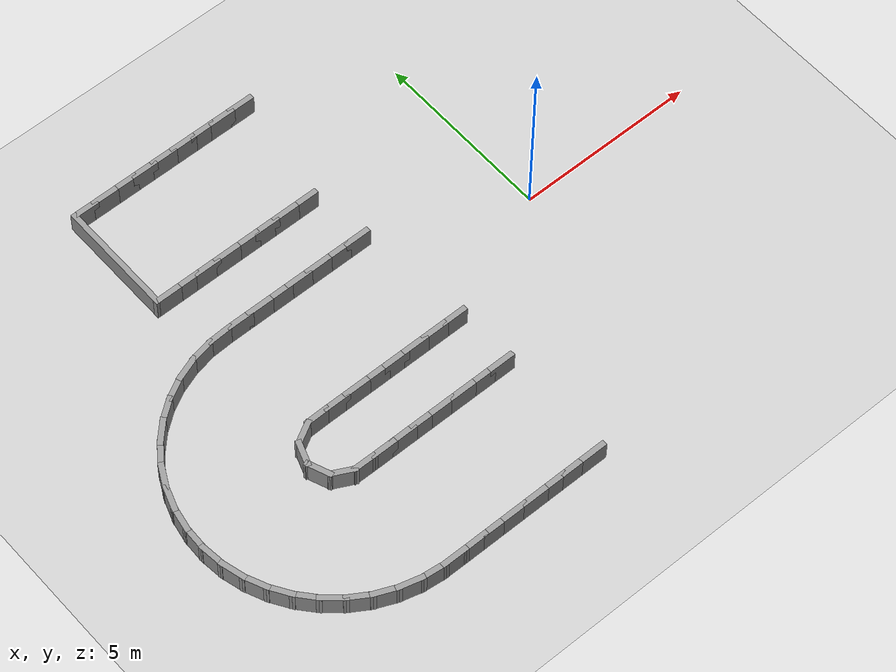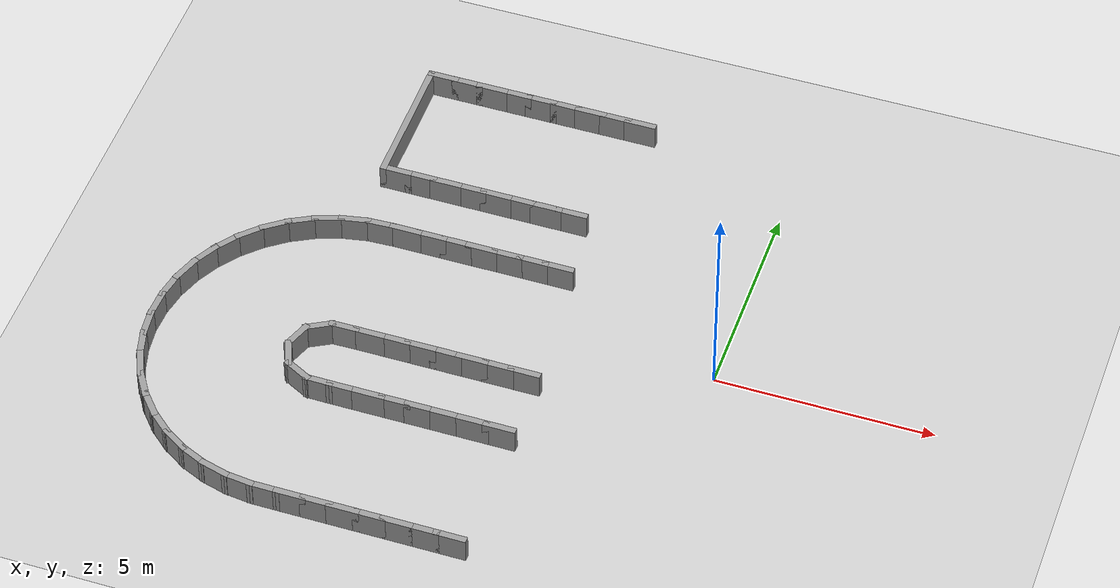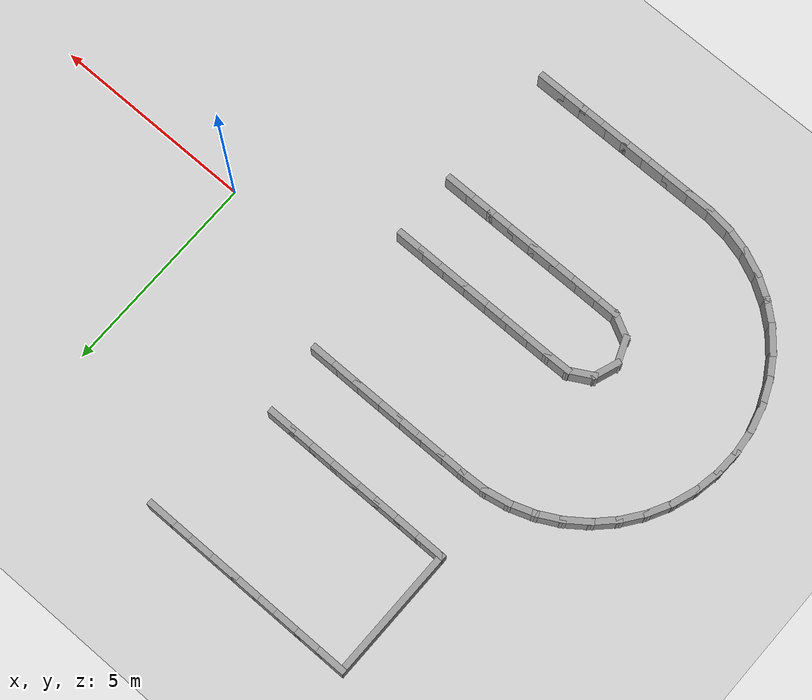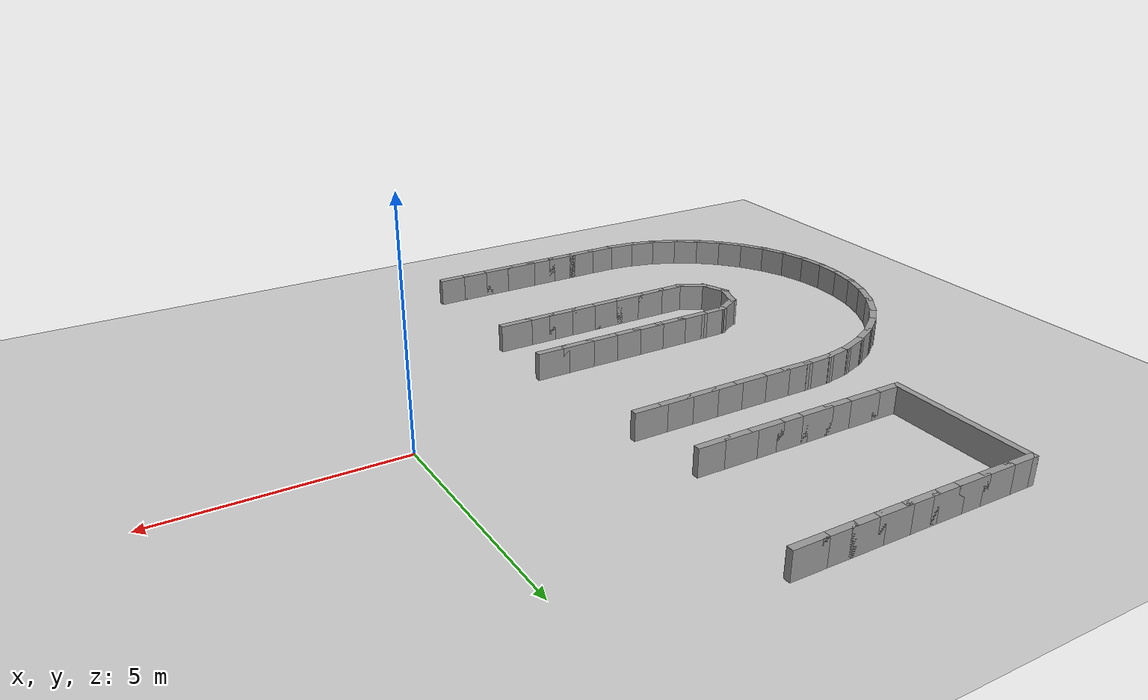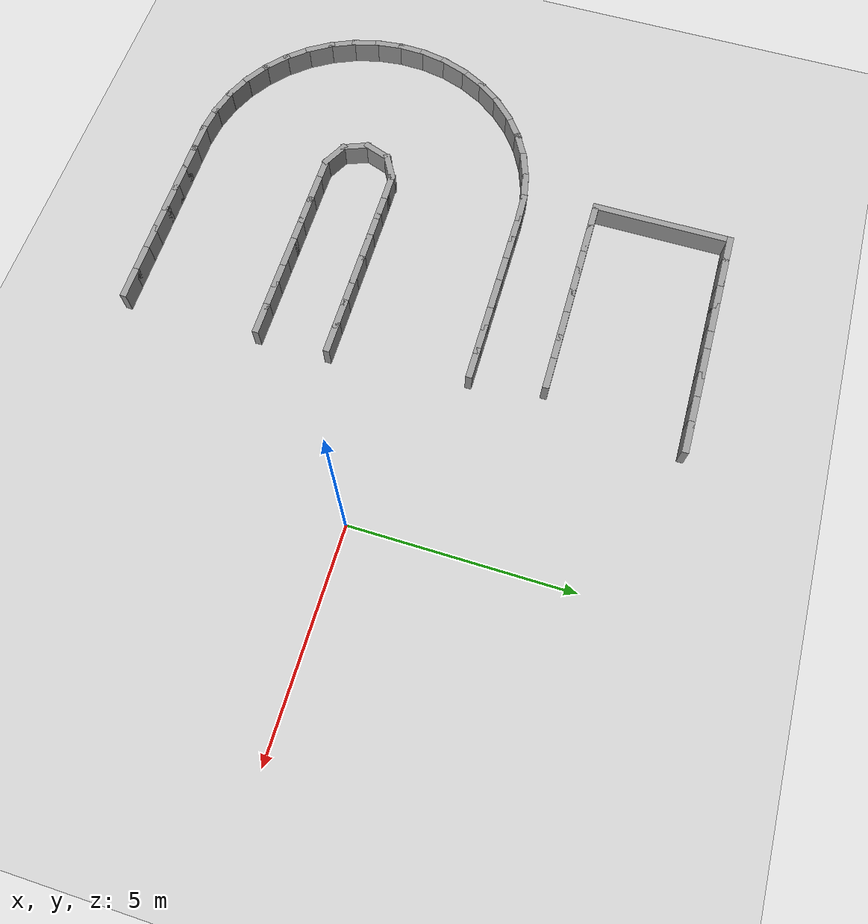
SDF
<sdf version="1.7">
 <world name="default">
  <model name="ground_plane">
   <static>1</static>
   <link name="link">
    <collision name="collision">
     <geometry><plane><normal>0 0 1</normal><size>100 100</size></plane></geometry>
     <surface><friction><ode><mu>100</mu><mu2>50</mu2></ode></friction></surface>
    </collision>
    <visual name="visual">
     <cast_shadows>0</cast_shadows>
     <geometry><plane><normal>0 0 1</normal><size>100 100</size></plane></geometry>
     <material>
      <script><uri>file://media/materials/scripts/gazebo.material</uri><name>Gazebo/Grey</name></script>
     </material>
    </visual>
   </link>
  </model>
  <model name="rand_serp_01">
   <link name="Wall_0">
    <collision name="Wall_0_Collision">
     <geometry><box><size>0.7500 0.1500 0.6000</size></box></geometry>
     <pose>0 0 0.3000 0 -0 0</pose>
    </collision>
    <visual name="Wall_0_Visual">
     <pose>0 0 0.3000 0 -0 0</pose>
     <geometry><box><size>0.7500 0.1500 0.6000</size></box></geometry>
     <material>
      <script><uri>file://media/materials/scripts/gazebo.material</uri><name>Gazebo/Grey</name></script>
      <ambient>1 1 1 1</ambient>
     </material>
    </visual>
    <pose>-8.5786 6.4421 0 0 -0 0.00000</pose>
   </link>
   <link name="Wall_1">
    <collision name="Wall_1_Collision">
     <geometry><box><size>0.7500 0.1500 0.6000</size></box></geometry>
     <pose>0 0 0.3000 0 -0 0</pose>
    </collision>
    <visual name="Wall_1_Visual">
     <pose>0 0 0.3000 0 -0 0</pose>
     <geometry><box><size>0.7500 0.1500 0.6000</size></box></geometry>
     <material>
      <script><uri>file://media/materials/scripts/gazebo.material</uri><name>Gazebo/Grey</name></script>
      <ambient>1 1 1 1</ambient>
     </material>
    </visual>
    <pose>-7.9786 6.4421 0 0 -0 0.00000</pose>
   </link>
   <link name="Wall_2">
    <collision name="Wall_2_Collision">
     <geometry><box><size>0.7500 0.1500 0.6000</size></box></geometry>
     <pose>0 0 0.3000 0 -0 0</pose>
    </collision>
    <visual name="Wall_2_Visual">
     <pose>0 0 0.3000 0 -0 0</pose>
     <geometry><box><size>0.7500 0.1500 0.6000</size></box></geometry>
     <material>
      <script><uri>file://media/materials/scripts/gazebo.material</uri><name>Gazebo/Grey</name></script>
      <ambient>1 1 1 1</ambient>
     </material>
    </visual>
    <pose>-7.3786 6.4421 0 0 -0 0.00000</pose>
   </link>
   <link name="Wall_3">
    <collision name="Wall_3_Collision">
     <geometry><box><size>0.7500 0.1500 0.6000</size></box></geometry>
     <pose>0 0 0.3000 0 -0 0</pose>
    </collision>
    <visual name="Wall_3_Visual">
     <pose>0 0 0.3000 0 -0 0</pose>
     <geometry><box><size>0.7500 0.1500 0.6000</size></box></geometry>
     <material>
      <script><uri>file://media/materials/scripts/gazebo.material</uri><name>Gazebo/Grey</name></script>
      <ambient>1 1 1 1</ambient>
     </material>
    </visual>
    <pose>-6.7786 6.4421 0 0 -0 0.00000</pose>
   </link>
   <link name="Wall_4">
    <collision name="Wall_4_Collision">
     <geometry><box><size>0.7500 0.1500 0.6000</size></box></geometry>
     <pose>0 0 0.3000 0 -0 0</pose>
    </collision>
    <visual name="Wall_4_Visual">
     <pose>0 0 0.3000 0 -0 0</pose>
     <geometry><box><size>0.7500 0.1500 0.6000</size></box></geometry>
     <material>
      <script><uri>file://media/materials/scripts/gazebo.material</uri><name>Gazebo/Grey</name></script>
      <ambient>1 1 1 1</ambient>
     </material>
    </visual>
    <pose>-6.1786 6.4421 0 0 -0 0.00000</pose>
   </link>
   <link name="Wall_5">
    <collision name="Wall_5_Collision">
     <geometry><box><size>0.7500 0.1500 0.6000</size></box></geometry>
     <pose>0 0 0.3000 0 -0 0</pose>
    </collision>
    <visual name="Wall_5_Visual">
     <pose>0 0 0.3000 0 -0 0</pose>
     <geometry><box><size>0.7500 0.1500 0.6000</size></box></geometry>
     <material>
      <script><uri>file://media/materials/scripts/gazebo.material</uri><name>Gazebo/Grey</name></script>
      <ambient>1 1 1 1</ambient>
     </material>
    </visual>
    <pose>-5.5786 6.4421 0 0 -0 0.00000</pose>
   </link>
   <link name="Wall_6">
    <collision name="Wall_6_Collision">
     <geometry><box><size>0.7500 0.1500 0.6000</size></box></geometry>
     <pose>0 0 0.3000 0 -0 0</pose>
    </collision>
    <visual name="Wall_6_Visual">
     <pose>0 0 0.3000 0 -0 0</pose>
     <geometry><box><size>0.7500 0.1500 0.6000</size></box></geometry>
     <material>
      <script><uri>file://media/materials/scripts/gazebo.material</uri><name>Gazebo/Grey</name></script>
      <ambient>1 1 1 1</ambient>
     </material>
    </visual>
    <pose>-4.9786 6.4421 0 0 -0 0.00000</pose>
   </link>
   <link name="Wall_7">
    <collision name="Wall_7_Collision">
     <geometry><box><size>0.7500 0.1500 0.6000</size></box></geometry>
     <pose>0 0 0.3000 0 -0 0</pose>
    </collision>
    <visual name="Wall_7_Visual">
     <pose>0 0 0.3000 0 -0 0</pose>
     <geometry><box><size>0.7500 0.1500 0.6000</size></box></geometry>
     <material>
      <script><uri>file://media/materials/scripts/gazebo.material</uri><name>Gazebo/Grey</name></script>
      <ambient>1 1 1 1</ambient>
     </material>
    </visual>
    <pose>-4.3786 6.4421 0 0 -0 0.00000</pose>
   </link>
   <link name="Wall_8">
    <collision name="Wall_8_Collision">
     <geometry><box><size>0.7500 0.1500 0.6000</size></box></geometry>
     <pose>0 0 0.3000 0 -0 0</pose>
    </collision>
    <visual name="Wall_8_Visual">
     <pose>0 0 0.3000 0 -0 0</pose>
     <geometry><box><size>0.7500 0.1500 0.6000</size></box></geometry>
     <material>
      <script><uri>file://media/materials/scripts/gazebo.material</uri><name>Gazebo/Grey</name></script>
      <ambient>1 1 1 1</ambient>
     </material>
    </visual>
    <pose>-3.7786 6.4421 0 0 -0 0.00000</pose>
   </link>
   <link name="Wall_69">
    <collision name="Wall_69_Collision">
     <geometry><box><size>0.7500 0.1500 0.6000</size></box></geometry>
     <pose>0 0 0.3000 0 -0 0</pose>
    </collision>
    <visual name="Wall_69_Visual">
     <pose>0 0 0.3000 0 -0 0</pose>
     <geometry><box><size>0.7500 0.1500 0.6000</size></box></geometry>
     <material>
      <script><uri>file://media/materials/scripts/gazebo.material</uri><name>Gazebo/Grey</name></script>
      <ambient>1 1 1 1</ambient>
     </material>
    </visual>
    <pose>-3.8445 -1.5924 0 0 -0 3.14159</pose>
   </link>
   <link name="Wall_70">
    <collision name="Wall_70_Collision">
     <geometry><box><size>0.7500 0.1500 0.6000</size></box></geometry>
     <pose>0 0 0.3000 0 -0 0</pose>
    </collision>
    <visual name="Wall_70_Visual">
     <pose>0 0 0.3000 0 -0 0</pose>
     <geometry><box><size>0.7500 0.1500 0.6000</size></box></geometry>
     <material>
      <script><uri>file://media/materials/scripts/gazebo.material</uri><name>Gazebo/Grey</name></script>
      <ambient>1 1 1 1</ambient>
     </material>
    </visual>
    <pose>-4.4445 -1.5924 0 0 -0 3.14159</pose>
   </link>
   <link name="Wall_71">
    <collision name="Wall_71_Collision">
     <geometry><box><size>0.7500 0.1500 0.6000</size></box></geometry>
     <pose>0 0 0.3000 0 -0 0</pose>
    </collision>
    <visual name="Wall_71_Visual">
     <pose>0 0 0.3000 0 -0 0</pose>
     <geometry><box><size>0.7500 0.1500 0.6000</size></box></geometry>
     <material>
      <script><uri>file://media/materials/scripts/gazebo.material</uri><name>Gazebo/Grey</name></script>
      <ambient>1 1 1 1</ambient>
     </material>
    </visual>
    <pose>-5.0445 -1.5924 0 0 -0 3.14159</pose>
   </link>
   <link name="Wall_72">
    <collision name="Wall_72_Collision">
     <geometry><box><size>0.7500 0.1500 0.6000</size></box></geometry>
     <pose>0 0 0.3000 0 -0 0</pose>
    </collision>
    <visual name="Wall_72_Visual">
     <pose>0 0 0.3000 0 -0 0</pose>
     <geometry><box><size>0.7500 0.1500 0.6000</size></box></geometry>
     <material>
      <script><uri>file://media/materials/scripts/gazebo.material</uri><name>Gazebo/Grey</name></script>
      <ambient>1 1 1 1</ambient>
     </material>
    </visual>
    <pose>-5.6445 -1.5924 0 0 -0 3.14159</pose>
   </link>
   <link name="Wall_73">
    <collision name="Wall_73_Collision">
     <geometry><box><size>0.7500 0.1500 0.6000</size></box></geometry>
     <pose>0 0 0.3000 0 -0 0</pose>
    </collision>
    <visual name="Wall_73_Visual">
     <pose>0 0 0.3000 0 -0 0</pose>
     <geometry><box><size>0.7500 0.1500 0.6000</size></box></geometry>
     <material>
      <script><uri>file://media/materials/scripts/gazebo.material</uri><name>Gazebo/Grey</name></script>
      <ambient>1 1 1 1</ambient>
     </material>
    </visual>
    <pose>-6.2445 -1.5924 0 0 -0 3.14159</pose>
   </link>
   <link name="Wall_74">
    <collision name="Wall_74_Collision">
     <geometry><box><size>0.7500 0.1500 0.6000</size></box></geometry>
     <pose>0 0 0.3000 0 -0 0</pose>
    </collision>
    <visual name="Wall_74_Visual">
     <pose>0 0 0.3000 0 -0 0</pose>
     <geometry><box><size>0.7500 0.1500 0.6000</size></box></geometry>
     <material>
      <script><uri>file://media/materials/scripts/gazebo.material</uri><name>Gazebo/Grey</name></script>
      <ambient>1 1 1 1</ambient>
     </material>
    </visual>
    <pose>-6.8445 -1.5924 0 0 -0 3.14159</pose>
   </link>
   <link name="Wall_75">
    <collision name="Wall_75_Collision">
     <geometry><box><size>0.7500 0.1500 0.6000</size></box></geometry>
     <pose>0 0 0.3000 0 -0 0</pose>
    </collision>
    <visual name="Wall_75_Visual">
     <pose>0 0 0.3000 0 -0 0</pose>
     <geometry><box><size>0.7500 0.1500 0.6000</size></box></geometry>
     <material>
      <script><uri>file://media/materials/scripts/gazebo.material</uri><name>Gazebo/Grey</name></script>
      <ambient>1 1 1 1</ambient>
     </material>
    </visual>
    <pose>-7.4445 -1.5924 0 0 -0 3.14159</pose>
   </link>
   <link name="Wall_76">
    <collision name="Wall_76_Collision">
     <geometry><box><size>0.7050 0.1500 0.6000</size></box></geometry>
     <pose>0 0 0.3000 0 -0 0</pose>
    </collision>
    <visual name="Wall_76_Visual">
     <pose>0 0 0.3000 0 -0 0</pose>
     <geometry><box><size>0.7050 0.1500 0.6000</size></box></geometry>
     <material>
      <script><uri>file://media/materials/scripts/gazebo.material</uri><name>Gazebo/Grey</name></script>
      <ambient>1 1 1 1</ambient>
     </material>
    </visual>
    <pose>-8.0219 -1.5969 0 0 -0 -3.12545</pose>
   </link>
   <link name="Wall_77">
    <collision name="Wall_77_Collision">
     <geometry><box><size>0.7370 0.1500 0.6000</size></box></geometry>
     <pose>0 0 0.3000 0 -0 0</pose>
    </collision>
    <visual name="Wall_77_Visual">
     <pose>0 0 0.3000 0 -0 0</pose>
     <geometry><box><size>0.7370 0.1500 0.6000</size></box></geometry>
     <material>
      <script><uri>file://media/materials/scripts/gazebo.material</uri><name>Gazebo/Grey</name></script>
      <ambient>1 1 1 1</ambient>
     </material>
    </visual>
    <pose>-8.5561 -1.7436 0 0 -0 -2.63560</pose>
   </link>
   <link name="Wall_78">
    <collision name="Wall_78_Collision">
     <geometry><box><size>0.7371 0.1500 0.6000</size></box></geometry>
     <pose>0 0 0.3000 0 -0 0</pose>
    </collision>
    <visual name="Wall_78_Visual">
     <pose>0 0 0.3000 0 -0 0</pose>
     <geometry><box><size>0.7371 0.1500 0.6000</size></box></geometry>
     <material>
      <script><uri>file://media/materials/scripts/gazebo.material</uri><name>Gazebo/Grey</name></script>
      <ambient>1 1 1 1</ambient>
     </material>
    </visual>
    <pose>-8.9119 -2.1622 0 0 -0 -1.91482</pose>
   </link>
   <link name="Wall_79">
    <collision name="Wall_79_Collision">
     <geometry><box><size>0.7371 0.1500 0.6000</size></box></geometry>
     <pose>0 0 0.3000 0 -0 0</pose>
    </collision>
    <visual name="Wall_79_Visual">
     <pose>0 0 0.3000 0 -0 0</pose>
     <geometry><box><size>0.7371 0.1500 0.6000</size></box></geometry>
     <material>
      <script><uri>file://media/materials/scripts/gazebo.material</uri><name>Gazebo/Grey</name></script>
      <ambient>1 1 1 1</ambient>
     </material>
    </visual>
    <pose>-8.9028 -2.7115 0 0 -0 -1.19396</pose>
   </link>
   <link name="Wall_80">
    <collision name="Wall_80_Collision">
     <geometry><box><size>0.7371 0.1500 0.6000</size></box></geometry>
     <pose>0 0 0.3000 0 -0 0</pose>
    </collision>
    <visual name="Wall_80_Visual">
     <pose>0 0 0.3000 0 -0 0</pose>
     <geometry><box><size>0.7371 0.1500 0.6000</size></box></geometry>
     <material>
      <script><uri>file://media/materials/scripts/gazebo.material</uri><name>Gazebo/Grey</name></script>
      <ambient>1 1 1 1</ambient>
     </material>
    </visual>
    <pose>-8.5335 -3.1182 0 0 -0 -0.47301</pose>
   </link>
   <link name="Wall_81">
    <collision name="Wall_81_Collision">
     <geometry><box><size>0.6865 0.1500 0.6000</size></box></geometry>
     <pose>0 0 0.3000 0 -0 0</pose>
    </collision>
    <visual name="Wall_81_Visual">
     <pose>0 0 0.3000 0 -0 0</pose>
     <geometry><box><size>0.6865 0.1500 0.6000</size></box></geometry>
     <material>
      <script><uri>file://media/materials/scripts/gazebo.material</uri><name>Gazebo/Grey</name></script>
      <ambient>1 1 1 1</ambient>
     </material>
    </visual>
    <pose>-8.0039 -3.2546 0 0 -0 -0.01001</pose>
   </link>
   <link name="Wall_82">
    <collision name="Wall_82_Collision">
     <geometry><box><size>0.7500 0.1500 0.6000</size></box></geometry>
     <pose>0 0 0.3000 0 -0 0</pose>
    </collision>
    <visual name="Wall_82_Visual">
     <pose>0 0 0.3000 0 -0 0</pose>
     <geometry><box><size>0.7500 0.1500 0.6000</size></box></geometry>
     <material>
      <script><uri>file://media/materials/scripts/gazebo.material</uri><name>Gazebo/Grey</name></script>
      <ambient>1 1 1 1</ambient>
     </material>
    </visual>
    <pose>-7.4357 -3.2573 0 0 -0 0.00000</pose>
   </link>
   <link name="Wall_83">
    <collision name="Wall_83_Collision">
     <geometry><box><size>0.7500 0.1500 0.6000</size></box></geometry>
     <pose>0 0 0.3000 0 -0 0</pose>
    </collision>
    <visual name="Wall_83_Visual">
     <pose>0 0 0.3000 0 -0 0</pose>
     <geometry><box><size>0.7500 0.1500 0.6000</size></box></geometry>
     <material>
      <script><uri>file://media/materials/scripts/gazebo.material</uri><name>Gazebo/Grey</name></script>
      <ambient>1 1 1 1</ambient>
     </material>
    </visual>
    <pose>-6.8357 -3.2573 0 0 -0 0.00000</pose>
   </link>
   <link name="Wall_84">
    <collision name="Wall_84_Collision">
     <geometry><box><size>0.7500 0.1500 0.6000</size></box></geometry>
     <pose>0 0 0.3000 0 -0 0</pose>
    </collision>
    <visual name="Wall_84_Visual">
     <pose>0 0 0.3000 0 -0 0</pose>
     <geometry><box><size>0.7500 0.1500 0.6000</size></box></geometry>
     <material>
      <script><uri>file://media/materials/scripts/gazebo.material</uri><name>Gazebo/Grey</name></script>
      <ambient>1 1 1 1</ambient>
     </material>
    </visual>
    <pose>-6.2357 -3.2573 0 0 -0 0.00000</pose>
   </link>
   <link name="Wall_85">
    <collision name="Wall_85_Collision">
     <geometry><box><size>0.7500 0.1500 0.6000</size></box></geometry>
     <pose>0 0 0.3000 0 -0 0</pose>
    </collision>
    <visual name="Wall_85_Visual">
     <pose>0 0 0.3000 0 -0 0</pose>
     <geometry><box><size>0.7500 0.1500 0.6000</size></box></geometry>
     <material>
      <script><uri>file://media/materials/scripts/gazebo.material</uri><name>Gazebo/Grey</name></script>
      <ambient>1 1 1 1</ambient>
     </material>
    </visual>
    <pose>-5.6357 -3.2573 0 0 -0 0.00000</pose>
   </link>
   <link name="Wall_86">
    <collision name="Wall_86_Collision">
     <geometry><box><size>0.7500 0.1500 0.6000</size></box></geometry>
     <pose>0 0 0.3000 0 -0 0</pose>
    </collision>
    <visual name="Wall_86_Visual">
     <pose>0 0 0.3000 0 -0 0</pose>
     <geometry><box><size>0.7500 0.1500 0.6000</size></box></geometry>
     <material>
      <script><uri>file://media/materials/scripts/gazebo.material</uri><name>Gazebo/Grey</name></script>
      <ambient>1 1 1 1</ambient>
     </material>
    </visual>
    <pose>-5.0357 -3.2573 0 0 -0 0.00000</pose>
   </link>
   <link name="Wall_87">
    <collision name="Wall_87_Collision">
     <geometry><box><size>0.7500 0.1500 0.6000</size></box></geometry>
     <pose>0 0 0.3000 0 -0 0</pose>
    </collision>
    <visual name="Wall_87_Visual">
     <pose>0 0 0.3000 0 -0 0</pose>
     <geometry><box><size>0.7500 0.1500 0.6000</size></box></geometry>
     <material>
      <script><uri>file://media/materials/scripts/gazebo.material</uri><name>Gazebo/Grey</name></script>
      <ambient>1 1 1 1</ambient>
     </material>
    </visual>
    <pose>-4.4357 -3.2573 0 0 -0 0.00000</pose>
   </link>
   <link name="Wall_88">
    <collision name="Wall_88_Collision">
     <geometry><box><size>0.7500 0.1500 0.6000</size></box></geometry>
     <pose>0 0 0.3000 0 -0 0</pose>
    </collision>
    <visual name="Wall_88_Visual">
     <pose>0 0 0.3000 0 -0 0</pose>
     <geometry><box><size>0.7500 0.1500 0.6000</size></box></geometry>
     <material>
      <script><uri>file://media/materials/scripts/gazebo.material</uri><name>Gazebo/Grey</name></script>
      <ambient>1 1 1 1</ambient>
     </material>
    </visual>
    <pose>-3.8357 -3.2573 0 0 -0 0.00000</pose>
   </link>
   <link name="Wall_110">
    <collision name="Wall_110_Collision">
     <geometry><box><size>0.7500 0.1500 0.6000</size></box></geometry>
     <pose>0 0 0.3000 0 -0 0</pose>
    </collision>
    <visual name="Wall_110_Visual">
     <pose>0 0 0.3000 0 -0 0</pose>
     <geometry><box><size>0.7500 0.1500 0.6000</size></box></geometry>
     <material>
      <script><uri>file://media/materials/scripts/gazebo.material</uri><name>Gazebo/Grey</name></script>
      <ambient>1 1 1 1</ambient>
     </material>
    </visual>
    <pose>-8.5786 3.2573 0 0 -0 0.00000</pose>
   </link>
   <link name="Wall_111">
    <collision name="Wall_111_Collision">
     <geometry><box><size>0.7500 0.1500 0.6000</size></box></geometry>
     <pose>0 0 0.3000 0 -0 0</pose>
    </collision>
    <visual name="Wall_111_Visual">
     <pose>0 0 0.3000 0 -0 0</pose>
     <geometry><box><size>0.7500 0.1500 0.6000</size></box></geometry>
     <material>
      <script><uri>file://media/materials/scripts/gazebo.material</uri><name>Gazebo/Grey</name></script>
      <ambient>1 1 1 1</ambient>
     </material>
    </visual>
    <pose>-7.9786 3.2573 0 0 -0 0.00000</pose>
   </link>
   <link name="Wall_112">
    <collision name="Wall_112_Collision">
     <geometry><box><size>0.7500 0.1500 0.6000</size></box></geometry>
     <pose>0 0 0.3000 0 -0 0</pose>
    </collision>
    <visual name="Wall_112_Visual">
     <pose>0 0 0.3000 0 -0 0</pose>
     <geometry><box><size>0.7500 0.1500 0.6000</size></box></geometry>
     <material>
      <script><uri>file://media/materials/scripts/gazebo.material</uri><name>Gazebo/Grey</name></script>
      <ambient>1 1 1 1</ambient>
     </material>
    </visual>
    <pose>-7.3786 3.2573 0 0 -0 0.00000</pose>
   </link>
   <link name="Wall_113">
    <collision name="Wall_113_Collision">
     <geometry><box><size>0.7500 0.1500 0.6000</size></box></geometry>
     <pose>0 0 0.3000 0 -0 0</pose>
    </collision>
    <visual name="Wall_113_Visual">
     <pose>0 0 0.3000 0 -0 0</pose>
     <geometry><box><size>0.7500 0.1500 0.6000</size></box></geometry>
     <material>
      <script><uri>file://media/materials/scripts/gazebo.material</uri><name>Gazebo/Grey</name></script>
      <ambient>1 1 1 1</ambient>
     </material>
    </visual>
    <pose>-6.7786 3.2573 0 0 -0 0.00000</pose>
   </link>
   <link name="Wall_114">
    <collision name="Wall_114_Collision">
     <geometry><box><size>0.7500 0.1500 0.6000</size></box></geometry>
     <pose>0 0 0.3000 0 -0 0</pose>
    </collision>
    <visual name="Wall_114_Visual">
     <pose>0 0 0.3000 0 -0 0</pose>
     <geometry><box><size>0.7500 0.1500 0.6000</size></box></geometry>
     <material>
      <script><uri>file://media/materials/scripts/gazebo.material</uri><name>Gazebo/Grey</name></script>
      <ambient>1 1 1 1</ambient>
     </material>
    </visual>
    <pose>-6.1786 3.2573 0 0 -0 0.00000</pose>
   </link>
   <link name="Wall_115">
    <collision name="Wall_115_Collision">
     <geometry><box><size>0.7500 0.1500 0.6000</size></box></geometry>
     <pose>0 0 0.3000 0 -0 0</pose>
    </collision>
    <visual name="Wall_115_Visual">
     <pose>0 0 0.3000 0 -0 0</pose>
     <geometry><box><size>0.7500 0.1500 0.6000</size></box></geometry>
     <material>
      <script><uri>file://media/materials/scripts/gazebo.material</uri><name>Gazebo/Grey</name></script>
      <ambient>1 1 1 1</ambient>
     </material>
    </visual>
    <pose>-5.5786 3.2573 0 0 -0 0.00000</pose>
   </link>
   <link name="Wall_116">
    <collision name="Wall_116_Collision">
     <geometry><box><size>0.7500 0.1500 0.6000</size></box></geometry>
     <pose>0 0 0.3000 0 -0 0</pose>
    </collision>
    <visual name="Wall_116_Visual">
     <pose>0 0 0.3000 0 -0 0</pose>
     <geometry><box><size>0.7500 0.1500 0.6000</size></box></geometry>
     <material>
      <script><uri>file://media/materials/scripts/gazebo.material</uri><name>Gazebo/Grey</name></script>
      <ambient>1 1 1 1</ambient>
     </material>
    </visual>
    <pose>-4.9786 3.2573 0 0 -0 0.00000</pose>
   </link>
   <link name="Wall_117">
    <collision name="Wall_117_Collision">
     <geometry><box><size>0.7500 0.1500 0.6000</size></box></geometry>
     <pose>0 0 0.3000 0 -0 0</pose>
    </collision>
    <visual name="Wall_117_Visual">
     <pose>0 0 0.3000 0 -0 0</pose>
     <geometry><box><size>0.7500 0.1500 0.6000</size></box></geometry>
     <material>
      <script><uri>file://media/materials/scripts/gazebo.material</uri><name>Gazebo/Grey</name></script>
      <ambient>1 1 1 1</ambient>
     </material>
    </visual>
    <pose>-4.3786 3.2573 0 0 -0 0.00000</pose>
   </link>
   <link name="Wall_163">
    <collision name="Wall_163_Collision">
     <geometry><box><size>0.7500 0.1500 0.6000</size></box></geometry>
     <pose>0 0 0.3000 0 -0 0</pose>
    </collision>
    <visual name="Wall_163_Visual">
     <pose>0 0 0.3000 0 -0 0</pose>
     <geometry><box><size>0.7500 0.1500 0.6000</size></box></geometry>
     <material>
      <script><uri>file://media/materials/scripts/gazebo.material</uri><name>Gazebo/Grey</name></script>
      <ambient>1 1 1 1</ambient>
     </material>
    </visual>
    <pose>-4.1412 1.5924 0 0 -0 3.14159</pose>
   </link>
   <link name="Wall_164">
    <collision name="Wall_164_Collision">
     <geometry><box><size>0.7500 0.1500 0.6000</size></box></geometry>
     <pose>0 0 0.3000 0 -0 0</pose>
    </collision>
    <visual name="Wall_164_Visual">
     <pose>0 0 0.3000 0 -0 0</pose>
     <geometry><box><size>0.7500 0.1500 0.6000</size></box></geometry>
     <material>
      <script><uri>file://media/materials/scripts/gazebo.material</uri><name>Gazebo/Grey</name></script>
      <ambient>1 1 1 1</ambient>
     </material>
    </visual>
    <pose>-4.7412 1.5924 0 0 -0 3.14159</pose>
   </link>
   <link name="Wall_165">
    <collision name="Wall_165_Collision">
     <geometry><box><size>0.7500 0.1500 0.6000</size></box></geometry>
     <pose>0 0 0.3000 0 -0 0</pose>
    </collision>
    <visual name="Wall_165_Visual">
     <pose>0 0 0.3000 0 -0 0</pose>
     <geometry><box><size>0.7500 0.1500 0.6000</size></box></geometry>
     <material>
      <script><uri>file://media/materials/scripts/gazebo.material</uri><name>Gazebo/Grey</name></script>
      <ambient>1 1 1 1</ambient>
     </material>
    </visual>
    <pose>-5.3412 1.5924 0 0 -0 3.14159</pose>
   </link>
   <link name="Wall_166">
    <collision name="Wall_166_Collision">
     <geometry><box><size>0.7500 0.1500 0.6000</size></box></geometry>
     <pose>0 0 0.3000 0 -0 0</pose>
    </collision>
    <visual name="Wall_166_Visual">
     <pose>0 0 0.3000 0 -0 0</pose>
     <geometry><box><size>0.7500 0.1500 0.6000</size></box></geometry>
     <material>
      <script><uri>file://media/materials/scripts/gazebo.material</uri><name>Gazebo/Grey</name></script>
      <ambient>1 1 1 1</ambient>
     </material>
    </visual>
    <pose>-5.9412 1.5924 0 0 -0 3.14159</pose>
   </link>
   <link name="Wall_167">
    <collision name="Wall_167_Collision">
     <geometry><box><size>0.7500 0.1500 0.6000</size></box></geometry>
     <pose>0 0 0.3000 0 -0 0</pose>
    </collision>
    <visual name="Wall_167_Visual">
     <pose>0 0 0.3000 0 -0 0</pose>
     <geometry><box><size>0.7500 0.1500 0.6000</size></box></geometry>
     <material>
      <script><uri>file://media/materials/scripts/gazebo.material</uri><name>Gazebo/Grey</name></script>
      <ambient>1 1 1 1</ambient>
     </material>
    </visual>
    <pose>-6.5412 1.5924 0 0 -0 3.14159</pose>
   </link>
   <link name="Wall_168">
    <collision name="Wall_168_Collision">
     <geometry><box><size>0.7500 0.1500 0.6000</size></box></geometry>
     <pose>0 0 0.3000 0 -0 0</pose>
    </collision>
    <visual name="Wall_168_Visual">
     <pose>0 0 0.3000 0 -0 0</pose>
     <geometry><box><size>0.7500 0.1500 0.6000</size></box></geometry>
     <material>
      <script><uri>file://media/materials/scripts/gazebo.material</uri><name>Gazebo/Grey</name></script>
      <ambient>1 1 1 1</ambient>
     </material>
    </visual>
    <pose>-7.1412 1.5924 0 0 -0 3.14159</pose>
   </link>
   <link name="Wall_169">
    <collision name="Wall_169_Collision">
     <geometry><box><size>0.7500 0.1500 0.6000</size></box></geometry>
     <pose>0 0 0.3000 0 -0 0</pose>
    </collision>
    <visual name="Wall_169_Visual">
     <pose>0 0 0.3000 0 -0 0</pose>
     <geometry><box><size>0.7500 0.1500 0.6000</size></box></geometry>
     <material>
      <script><uri>file://media/materials/scripts/gazebo.material</uri><name>Gazebo/Grey</name></script>
      <ambient>1 1 1 1</ambient>
     </material>
    </visual>
    <pose>-7.7412 1.5924 0 0 -0 3.14159</pose>
   </link>
   <link name="Wall_170">
    <collision name="Wall_170_Collision">
     <geometry><box><size>0.7496 0.1500 0.6000</size></box></geometry>
     <pose>0 0 0.3000 0 -0 0</pose>
    </collision>
    <visual name="Wall_170_Visual">
     <pose>0 0 0.3000 0 -0 0</pose>
     <geometry><box><size>0.7496 0.1500 0.6000</size></box></geometry>
     <material>
      <script><uri>file://media/materials/scripts/gazebo.material</uri><name>Gazebo/Grey</name></script>
      <ambient>1 1 1 1</ambient>
     </material>
    </visual>
    <pose>-8.3407 1.5790 0 0 -0 -3.09670</pose>
   </link>
   <link name="Wall_171">
    <collision name="Wall_171_Collision">
     <geometry><box><size>0.7494 0.1500 0.6000</size></box></geometry>
     <pose>0 0 0.3000 0 -0 0</pose>
    </collision>
    <visual name="Wall_171_Visual">
     <pose>0 0 0.3000 0 -0 0</pose>
     <geometry><box><size>0.7494 0.1500 0.6000</size></box></geometry>
     <material>
      <script><uri>file://media/materials/scripts/gazebo.material</uri><name>Gazebo/Grey</name></script>
      <ambient>1 1 1 1</ambient>
     </material>
    </visual>
    <pose>-8.9345 1.5087 0 0 -0 -2.95103</pose>
   </link>
   <link name="Wall_172">
    <collision name="Wall_172_Collision">
     <geometry><box><size>0.7494 0.1500 0.6000</size></box></geometry>
     <pose>0 0 0.3000 0 -0 0</pose>
    </collision>
    <visual name="Wall_172_Visual">
     <pose>0 0 0.3000 0 -0 0</pose>
     <geometry><box><size>0.7494 0.1500 0.6000</size></box></geometry>
     <material>
      <script><uri>file://media/materials/scripts/gazebo.material</uri><name>Gazebo/Grey</name></script>
      <ambient>1 1 1 1</ambient>
     </material>
    </visual>
    <pose>-9.5114 1.3522 0 0 -0 -2.80229</pose>
   </link>
   <link name="Wall_173">
    <collision name="Wall_173_Collision">
     <geometry><box><size>0.7494 0.1500 0.6000</size></box></geometry>
     <pose>0 0 0.3000 0 -0 0</pose>
    </collision>
    <visual name="Wall_173_Visual">
     <pose>0 0 0.3000 0 -0 0</pose>
     <geometry><box><size>0.7494 0.1500 0.6000</size></box></geometry>
     <material>
      <script><uri>file://media/materials/scripts/gazebo.material</uri><name>Gazebo/Grey</name></script>
      <ambient>1 1 1 1</ambient>
     </material>
    </visual>
    <pose>-10.0587 1.1120 0 0 -0 -2.65356</pose>
   </link>
   <link name="Wall_174">
    <collision name="Wall_174_Collision">
     <geometry><box><size>0.7494 0.1500 0.6000</size></box></geometry>
     <pose>0 0 0.3000 0 -0 0</pose>
    </collision>
    <visual name="Wall_174_Visual">
     <pose>0 0 0.3000 0 -0 0</pose>
     <geometry><box><size>0.7494 0.1500 0.6000</size></box></geometry>
     <material>
      <script><uri>file://media/materials/scripts/gazebo.material</uri><name>Gazebo/Grey</name></script>
      <ambient>1 1 1 1</ambient>
     </material>
    </visual>
    <pose>-10.5642 0.7930 0 0 -0 -2.50398</pose>
   </link>
   <link name="Wall_175">
    <collision name="Wall_175_Collision">
     <geometry><box><size>0.7494 0.1500 0.6000</size></box></geometry>
     <pose>0 0 0.3000 0 -0 0</pose>
    </collision>
    <visual name="Wall_175_Visual">
     <pose>0 0 0.3000 0 -0 0</pose>
     <geometry><box><size>0.7494 0.1500 0.6000</size></box></geometry>
     <material>
      <script><uri>file://media/materials/scripts/gazebo.material</uri><name>Gazebo/Grey</name></script>
      <ambient>1 1 1 1</ambient>
     </material>
    </visual>
    <pose>-11.0164 0.4021 0 0 -0 -2.35350</pose>
   </link>
   <link name="Wall_176">
    <collision name="Wall_176_Collision">
     <geometry><box><size>0.7494 0.1500 0.6000</size></box></geometry>
     <pose>0 0 0.3000 0 -0 0</pose>
    </collision>
    <visual name="Wall_176_Visual">
     <pose>0 0 0.3000 0 -0 0</pose>
     <geometry><box><size>0.7494 0.1500 0.6000</size></box></geometry>
     <material>
      <script><uri>file://media/materials/scripts/gazebo.material</uri><name>Gazebo/Grey</name></script>
      <ambient>1 1 1 1</ambient>
     </material>
    </visual>
    <pose>-11.4053 -0.0518 0 0 -0 -2.20477</pose>
   </link>
   <link name="Wall_177">
    <collision name="Wall_177_Collision">
     <geometry><box><size>0.7494 0.1500 0.6000</size></box></geometry>
     <pose>0 0 0.3000 0 -0 0</pose>
    </collision>
    <visual name="Wall_177_Visual">
     <pose>0 0 0.3000 0 -0 0</pose>
     <geometry><box><size>0.7494 0.1500 0.6000</size></box></geometry>
     <material>
      <script><uri>file://media/materials/scripts/gazebo.material</uri><name>Gazebo/Grey</name></script>
      <ambient>1 1 1 1</ambient>
     </material>
    </visual>
    <pose>-11.7226 -0.5584 0 0 -0 -2.05603</pose>
   </link>
   <link name="Wall_178">
    <collision name="Wall_178_Collision">
     <geometry><box><size>0.7494 0.1500 0.6000</size></box></geometry>
     <pose>0 0 0.3000 0 -0 0</pose>
    </collision>
    <visual name="Wall_178_Visual">
     <pose>0 0 0.3000 0 -0 0</pose>
     <geometry><box><size>0.7494 0.1500 0.6000</size></box></geometry>
     <material>
      <script><uri>file://media/materials/scripts/gazebo.material</uri><name>Gazebo/Grey</name></script>
      <ambient>1 1 1 1</ambient>
     </material>
    </visual>
    <pose>-11.9611 -1.1065 0 0 -0 -1.90671</pose>
   </link>
   <link name="Wall_179">
    <collision name="Wall_179_Collision">
     <geometry><box><size>0.7494 0.1500 0.6000</size></box></geometry>
     <pose>0 0 0.3000 0 -0 0</pose>
    </collision>
    <visual name="Wall_179_Visual">
     <pose>0 0 0.3000 0 -0 0</pose>
     <geometry><box><size>0.7494 0.1500 0.6000</size></box></geometry>
     <material>
      <script><uri>file://media/materials/scripts/gazebo.material</uri><name>Gazebo/Grey</name></script>
      <ambient>1 1 1 1</ambient>
     </material>
    </visual>
    <pose>-12.1151 -1.6840 0 0 -0 -1.75598</pose>
   </link>
   <link name="Wall_180">
    <collision name="Wall_180_Collision">
     <geometry><box><size>0.7494 0.1500 0.6000</size></box></geometry>
     <pose>0 0 0.3000 0 -0 0</pose>
    </collision>
    <visual name="Wall_180_Visual">
     <pose>0 0 0.3000 0 -0 0</pose>
     <geometry><box><size>0.7494 0.1500 0.6000</size></box></geometry>
     <material>
      <script><uri>file://media/materials/scripts/gazebo.material</uri><name>Gazebo/Grey</name></script>
      <ambient>1 1 1 1</ambient>
     </material>
    </visual>
    <pose>-12.1812 -2.2781 0 0 -0 -1.60725</pose>
   </link>
   <link name="Wall_181">
    <collision name="Wall_181_Collision">
     <geometry><box><size>0.7494 0.1500 0.6000</size></box></geometry>
     <pose>0 0 0.3000 0 -0 0</pose>
    </collision>
    <visual name="Wall_181_Visual">
     <pose>0 0 0.3000 0 -0 0</pose>
     <geometry><box><size>0.7494 0.1500 0.6000</size></box></geometry>
     <material>
      <script><uri>file://media/materials/scripts/gazebo.material</uri><name>Gazebo/Grey</name></script>
      <ambient>1 1 1 1</ambient>
     </material>
    </visual>
    <pose>-12.1586 -2.8754 0 0 -0 -1.45851</pose>
   </link>
   <link name="Wall_182">
    <collision name="Wall_182_Collision">
     <geometry><box><size>0.7494 0.1500 0.6000</size></box></geometry>
     <pose>0 0 0.3000 0 -0 0</pose>
    </collision>
    <visual name="Wall_182_Visual">
     <pose>0 0 0.3000 0 -0 0</pose>
     <geometry><box><size>0.7494 0.1500 0.6000</size></box></geometry>
     <material>
      <script><uri>file://media/materials/scripts/gazebo.material</uri><name>Gazebo/Grey</name></script>
      <ambient>1 1 1 1</ambient>
     </material>
    </visual>
    <pose>-12.0475 -3.4627 0 0 -0 -1.30944</pose>
   </link>
   <link name="Wall_183">
    <collision name="Wall_183_Collision">
     <geometry><box><size>0.7494 0.1500 0.6000</size></box></geometry>
     <pose>0 0 0.3000 0 -0 0</pose>
    </collision>
    <visual name="Wall_183_Visual">
     <pose>0 0 0.3000 0 -0 0</pose>
     <geometry><box><size>0.7494 0.1500 0.6000</size></box></geometry>
     <material>
      <script><uri>file://media/materials/scripts/gazebo.material</uri><name>Gazebo/Grey</name></script>
      <ambient>1 1 1 1</ambient>
     </material>
    </visual>
    <pose>-11.8500 -4.0269 0 0 -0 -1.15846</pose>
   </link>
   <link name="Wall_184">
    <collision name="Wall_184_Collision">
     <geometry><box><size>0.7494 0.1500 0.6000</size></box></geometry>
     <pose>0 0 0.3000 0 -0 0</pose>
    </collision>
    <visual name="Wall_184_Visual">
     <pose>0 0 0.3000 0 -0 0</pose>
     <geometry><box><size>0.7494 0.1500 0.6000</size></box></geometry>
     <material>
      <script><uri>file://media/materials/scripts/gazebo.material</uri><name>Gazebo/Grey</name></script>
      <ambient>1 1 1 1</ambient>
     </material>
    </visual>
    <pose>-11.5704 -4.5552 0 0 -0 -1.00973</pose>
   </link>
   <link name="Wall_185">
    <collision name="Wall_185_Collision">
     <geometry><box><size>0.7494 0.1500 0.6000</size></box></geometry>
     <pose>0 0 0.3000 0 -0 0</pose>
    </collision>
    <visual name="Wall_185_Visual">
     <pose>0 0 0.3000 0 -0 0</pose>
     <geometry><box><size>0.7494 0.1500 0.6000</size></box></geometry>
     <material>
      <script><uri>file://media/materials/scripts/gazebo.material</uri><name>Gazebo/Grey</name></script>
      <ambient>1 1 1 1</ambient>
     </material>
    </visual>
    <pose>-11.2157 -5.0362 0 0 -0 -0.86099</pose>
   </link>
   <link name="Wall_186">
    <collision name="Wall_186_Collision">
     <geometry><box><size>0.7494 0.1500 0.6000</size></box></geometry>
     <pose>0 0 0.3000 0 -0 0</pose>
    </collision>
    <visual name="Wall_186_Visual">
     <pose>0 0 0.3000 0 -0 0</pose>
     <geometry><box><size>0.7494 0.1500 0.6000</size></box></geometry>
     <material>
      <script><uri>file://media/materials/scripts/gazebo.material</uri><name>Gazebo/Grey</name></script>
      <ambient>1 1 1 1</ambient>
     </material>
    </visual>
    <pose>-10.7935 -5.4594 0 0 -0 -0.71217</pose>
   </link>
   <link name="Wall_187">
    <collision name="Wall_187_Collision">
     <geometry><box><size>0.7494 0.1500 0.6000</size></box></geometry>
     <pose>0 0 0.3000 0 -0 0</pose>
    </collision>
    <visual name="Wall_187_Visual">
     <pose>0 0 0.3000 0 -0 0</pose>
     <geometry><box><size>0.7494 0.1500 0.6000</size></box></geometry>
     <material>
      <script><uri>file://media/materials/scripts/gazebo.material</uri><name>Gazebo/Grey</name></script>
      <ambient>1 1 1 1</ambient>
     </material>
    </visual>
    <pose>-10.3128 -5.8147 0 0 -0 -0.56094</pose>
   </link>
   <link name="Wall_188">
    <collision name="Wall_188_Collision">
     <geometry><box><size>0.7494 0.1500 0.6000</size></box></geometry>
     <pose>0 0 0.3000 0 -0 0</pose>
    </collision>
    <visual name="Wall_188_Visual">
     <pose>0 0 0.3000 0 -0 0</pose>
     <geometry><box><size>0.7494 0.1500 0.6000</size></box></geometry>
     <material>
      <script><uri>file://media/materials/scripts/gazebo.material</uri><name>Gazebo/Grey</name></script>
      <ambient>1 1 1 1</ambient>
     </material>
    </visual>
    <pose>-9.7844 -6.0942 0 0 -0 -0.41220</pose>
   </link>
   <link name="Wall_189">
    <collision name="Wall_189_Collision">
     <geometry><box><size>0.7494 0.1500 0.6000</size></box></geometry>
     <pose>0 0 0.3000 0 -0 0</pose>
    </collision>
    <visual name="Wall_189_Visual">
     <pose>0 0 0.3000 0 -0 0</pose>
     <geometry><box><size>0.7494 0.1500 0.6000</size></box></geometry>
     <material>
      <script><uri>file://media/materials/scripts/gazebo.material</uri><name>Gazebo/Grey</name></script>
      <ambient>1 1 1 1</ambient>
     </material>
    </visual>
    <pose>-9.2205 -6.2923 0 0 -0 -0.26347</pose>
   </link>
   <link name="Wall_190">
    <collision name="Wall_190_Collision">
     <geometry><box><size>0.7494 0.1500 0.6000</size></box></geometry>
     <pose>0 0 0.3000 0 -0 0</pose>
    </collision>
    <visual name="Wall_190_Visual">
     <pose>0 0 0.3000 0 -0 0</pose>
     <geometry><box><size>0.7494 0.1500 0.6000</size></box></geometry>
     <material>
      <script><uri>file://media/materials/scripts/gazebo.material</uri><name>Gazebo/Grey</name></script>
      <ambient>1 1 1 1</ambient>
     </material>
    </visual>
    <pose>-8.6334 -6.4047 0 0 -0 -0.11474</pose>
   </link>
   <link name="Wall_191">
    <collision name="Wall_191_Collision">
     <geometry><box><size>0.7500 0.1500 0.6000</size></box></geometry>
     <pose>0 0 0.3000 0 -0 0</pose>
    </collision>
    <visual name="Wall_191_Visual">
     <pose>0 0 0.3000 0 -0 0</pose>
     <geometry><box><size>0.7500 0.1500 0.6000</size></box></geometry>
     <material>
      <script><uri>file://media/materials/scripts/gazebo.material</uri><name>Gazebo/Grey</name></script>
      <ambient>1 1 1 1</ambient>
     </material>
    </visual>
    <pose>-8.0357 -6.4406 0 0 -0 -0.00520</pose>
   </link>
   <link name="Wall_192">
    <collision name="Wall_192_Collision">
     <geometry><box><size>0.7500 0.1500 0.6000</size></box></geometry>
     <pose>0 0 0.3000 0 -0 0</pose>
    </collision>
    <visual name="Wall_192_Visual">
     <pose>0 0 0.3000 0 -0 0</pose>
     <geometry><box><size>0.7500 0.1500 0.6000</size></box></geometry>
     <material>
      <script><uri>file://media/materials/scripts/gazebo.material</uri><name>Gazebo/Grey</name></script>
      <ambient>1 1 1 1</ambient>
     </material>
    </visual>
    <pose>-7.4357 -6.4421 0 0 -0 0.00000</pose>
   </link>
   <link name="Wall_193">
    <collision name="Wall_193_Collision">
     <geometry><box><size>0.7500 0.1500 0.6000</size></box></geometry>
     <pose>0 0 0.3000 0 -0 0</pose>
    </collision>
    <visual name="Wall_193_Visual">
     <pose>0 0 0.3000 0 -0 0</pose>
     <geometry><box><size>0.7500 0.1500 0.6000</size></box></geometry>
     <material>
      <script><uri>file://media/materials/scripts/gazebo.material</uri><name>Gazebo/Grey</name></script>
      <ambient>1 1 1 1</ambient>
     </material>
    </visual>
    <pose>-6.8357 -6.4421 0 0 -0 0.00000</pose>
   </link>
   <link name="Wall_194">
    <collision name="Wall_194_Collision">
     <geometry><box><size>0.7500 0.1500 0.6000</size></box></geometry>
     <pose>0 0 0.3000 0 -0 0</pose>
    </collision>
    <visual name="Wall_194_Visual">
     <pose>0 0 0.3000 0 -0 0</pose>
     <geometry><box><size>0.7500 0.1500 0.6000</size></box></geometry>
     <material>
      <script><uri>file://media/materials/scripts/gazebo.material</uri><name>Gazebo/Grey</name></script>
      <ambient>1 1 1 1</ambient>
     </material>
    </visual>
    <pose>-6.2357 -6.4421 0 0 -0 0.00000</pose>
   </link>
   <link name="Wall_195">
    <collision name="Wall_195_Collision">
     <geometry><box><size>0.7500 0.1500 0.6000</size></box></geometry>
     <pose>0 0 0.3000 0 -0 0</pose>
    </collision>
    <visual name="Wall_195_Visual">
     <pose>0 0 0.3000 0 -0 0</pose>
     <geometry><box><size>0.7500 0.1500 0.6000</size></box></geometry>
     <material>
      <script><uri>file://media/materials/scripts/gazebo.material</uri><name>Gazebo/Grey</name></script>
      <ambient>1 1 1 1</ambient>
     </material>
    </visual>
    <pose>-5.6357 -6.4421 0 0 -0 0.00000</pose>
   </link>
   <link name="Wall_196">
    <collision name="Wall_196_Collision">
     <geometry><box><size>0.7500 0.1500 0.6000</size></box></geometry>
     <pose>0 0 0.3000 0 -0 0</pose>
    </collision>
    <visual name="Wall_196_Visual">
     <pose>0 0 0.3000 0 -0 0</pose>
     <geometry><box><size>0.7500 0.1500 0.6000</size></box></geometry>
     <material>
      <script><uri>file://media/materials/scripts/gazebo.material</uri><name>Gazebo/Grey</name></script>
      <ambient>1 1 1 1</ambient>
     </material>
    </visual>
    <pose>-5.0357 -6.4421 0 0 -0 0.00000</pose>
   </link>
   <link name="Wall_197">
    <collision name="Wall_197_Collision">
     <geometry><box><size>0.7500 0.1500 0.6000</size></box></geometry>
     <pose>0 0 0.3000 0 -0 0</pose>
    </collision>
    <visual name="Wall_197_Visual">
     <pose>0 0 0.3000 0 -0 0</pose>
     <geometry><box><size>0.7500 0.1500 0.6000</size></box></geometry>
     <material>
      <script><uri>file://media/materials/scripts/gazebo.material</uri><name>Gazebo/Grey</name></script>
      <ambient>1 1 1 1</ambient>
     </material>
    </visual>
    <pose>-4.4357 -6.4421 0 0 -0 0.00000</pose>
   </link>
   <link name="Wall_198">
    <collision name="Wall_198_Collision">
     <geometry><box><size>0.7500 0.1500 0.6000</size></box></geometry>
     <pose>0 0 0.3000 0 -0 0</pose>
    </collision>
    <visual name="Wall_198_Visual">
     <pose>0 0 0.3000 0 -0 0</pose>
     <geometry><box><size>0.7500 0.1500 0.6000</size></box></geometry>
     <material>
      <script><uri>file://media/materials/scripts/gazebo.material</uri><name>Gazebo/Grey</name></script>
      <ambient>1 1 1 1</ambient>
     </material>
    </visual>
    <pose>-3.8357 -6.4421 0 0 -0 0.00000</pose>
   </link>
   <link name="Wall_220">
    <collision name="Wall_220_Collision">
     <geometry><box><size>3.3348 0.1500 0.6000</size></box></geometry>
     <pose>0 0 0.3000 0 -0 0</pose>
    </collision>
    <visual name="Wall_220_Visual">
     <pose>0 0 0.3000 0 -0 0</pose>
     <geometry><box><size>3.3348 0.1500 0.6000</size></box></geometry>
     <material>
      <script><uri>file://media/materials/scripts/gazebo.material</uri><name>Gazebo/Grey</name></script>
      <ambient>1 1 1 1</ambient>
     </material>
    </visual>
    <pose>-8.8786 4.8497 0 0 -0 1.57080</pose>
   </link>
   <static>1</static>
  </model>
 </world>
</sdf>
